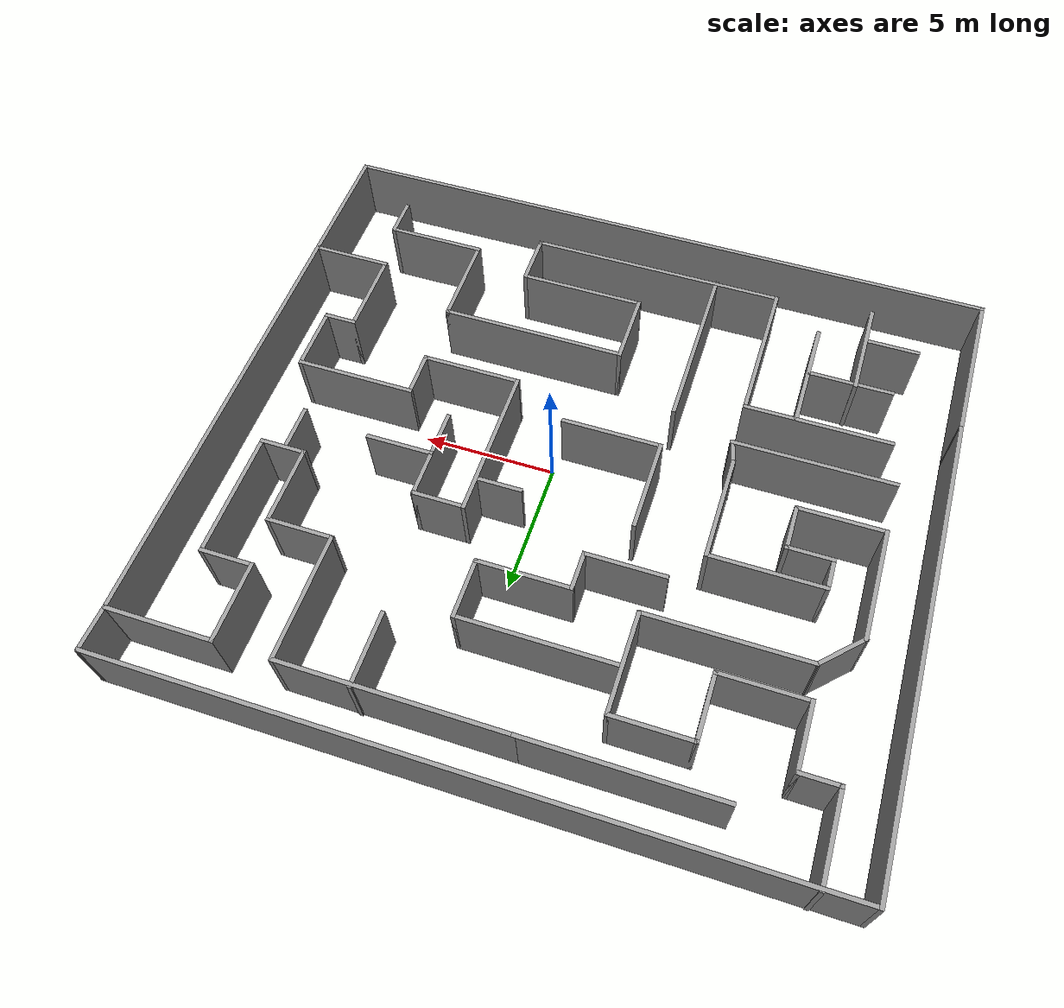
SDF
<?xml version='1.0'?>
<sdf version='1.7'>
  <model name='newgmapping'>
    <pose>-1.06194 0.890848 0 0 -0 0</pose>
    <link name='Wall_10'>
      <collision name='Wall_10_Collision'>
        <geometry>
          <box>
            <size>3.25 0.15 2.5</size>
          </box>
        </geometry>
        <pose>0 0 1.25 0 -0 0</pose>
      </collision>
      <visual name='Wall_10_Visual'>
        <pose>0 0 1.25 0 -0 0</pose>
        <geometry>
          <box>
            <size>3.25 0.15 2.5</size>
          </box>
        </geometry>
        <material>
          <script>
            <uri>file://media/materials/scripts/gazebo.material</uri>
            <name>Gazebo/Grey</name>
          </script>
          <ambient>1 1 1 1</ambient>
        </material>
        <meta>
          <layer>0</layer>
        </meta>
      </visual>
      <pose>-11.0888 9.92787 0 0 -0 -1.5708</pose>
    </link>
    <link name='Wall_11'>
      <collision name='Wall_11_Collision'>
        <geometry>
          <box>
            <size>1.5 0.15 2.5</size>
          </box>
        </geometry>
        <pose>0 0 1.25 0 -0 0</pose>
      </collision>
      <visual name='Wall_11_Visual'>
        <pose>0 0 1.25 0 -0 0</pose>
        <geometry>
          <box>
            <size>1.5 0.15 2.5</size>
          </box>
        </geometry>
        <material>
          <script>
            <uri>file://media/materials/scripts/gazebo.material</uri>
            <name>Gazebo/Grey</name>
          </script>
          <ambient>1 1 1 1</ambient>
        </material>
        <meta>
          <layer>0</layer>
        </meta>
      </visual>
      <pose>-10.4139 8.37787 0 0 -0 0</pose>
    </link>
    <link name='Wall_12'>
      <collision name='Wall_12_Collision'>
        <geometry>
          <box>
            <size>2.5 0.15 2.5</size>
          </box>
        </geometry>
        <pose>0 0 1.25 0 -0 0</pose>
      </collision>
      <visual name='Wall_12_Visual'>
        <pose>0 0 1.25 0 -0 0</pose>
        <geometry>
          <box>
            <size>2.5 0.15 2.5</size>
          </box>
        </geometry>
        <material>
          <script>
            <uri>file://media/materials/scripts/gazebo.material</uri>
            <name>Gazebo/Grey</name>
          </script>
          <ambient>1 1 1 1</ambient>
        </material>
        <meta>
          <layer>0</layer>
        </meta>
      </visual>
      <pose>-9.73885 7.20287 0 0 -0 -1.5708</pose>
    </link>
    <link name='Wall_13'>
      <collision name='Wall_13_Collision'>
        <geometry>
          <box>
            <size>3.25 0.15 2.5</size>
          </box>
        </geometry>
        <pose>0 0 1.25 0 -0 0</pose>
      </collision>
      <visual name='Wall_13_Visual'>
        <pose>0 0 1.25 0 -0 0</pose>
        <geometry>
          <box>
            <size>3.25 0.15 2.5</size>
          </box>
        </geometry>
        <material>
          <script>
            <uri>file://media/materials/scripts/gazebo.material</uri>
            <name>Gazebo/Grey</name>
          </script>
          <ambient>1 1 1 1</ambient>
        </material>
        <meta>
          <layer>0</layer>
        </meta>
      </visual>
      <pose>-8.18885 6.02787 0 0 -0 0</pose>
    </link>
    <link name='Wall_14'>
      <collision name='Wall_14_Collision'>
        <geometry>
          <box>
            <size>2.5 0.15 2.5</size>
          </box>
        </geometry>
        <pose>0 0 1.25 0 -0 0</pose>
      </collision>
      <visual name='Wall_14_Visual'>
        <pose>0 0 1.25 0 -0 0</pose>
        <geometry>
          <box>
            <size>2.5 0.15 2.5</size>
          </box>
        </geometry>
        <material>
          <script>
            <uri>file://media/materials/scripts/gazebo.material</uri>
            <name>Gazebo/Grey</name>
          </script>
          <ambient>1 1 1 1</ambient>
        </material>
        <meta>
          <layer>0</layer>
        </meta>
      </visual>
      <pose>-6.63885 7.20287 0 0 -0 1.5708</pose>
    </link>
    <link name='Wall_15'>
      <collision name='Wall_15_Collision'>
        <geometry>
          <box>
            <size>3 0.15 2.5</size>
          </box>
        </geometry>
        <pose>0 0 1.25 0 -0 0</pose>
      </collision>
      <visual name='Wall_15_Visual'>
        <pose>0 0 1.25 0 -0 0</pose>
        <geometry>
          <box>
            <size>3 0.15 2.5</size>
          </box>
        </geometry>
        <material>
          <script>
            <uri>file://media/materials/scripts/gazebo.material</uri>
            <name>Gazebo/Grey</name>
          </script>
          <ambient>1 1 1 1</ambient>
        </material>
        <meta>
          <layer>0</layer>
        </meta>
      </visual>
      <pose>-5.21385 8.37787 0 0 -0 0</pose>
    </link>
    <link name='Wall_16'>
      <collision name='Wall_16_Collision'>
        <geometry>
          <box>
            <size>3.75 0.15 2.5</size>
          </box>
        </geometry>
        <pose>0 0 1.25 0 -0 0</pose>
      </collision>
      <visual name='Wall_16_Visual'>
        <pose>0 0 1.25 0 -0 0</pose>
        <geometry>
          <box>
            <size>3.75 0.15 2.5</size>
          </box>
        </geometry>
        <material>
          <script>
            <uri>file://media/materials/scripts/gazebo.material</uri>
            <name>Gazebo/Grey</name>
          </script>
          <ambient>1 1 1 1</ambient>
        </material>
        <meta>
          <layer>0</layer>
        </meta>
      </visual>
      <pose>-3.78885 6.57787 0 0 -0 -1.5708</pose>
    </link>
    <link name='Wall_17'>
      <collision name='Wall_17_Collision'>
        <geometry>
          <box>
            <size>6 0.15 2.5</size>
          </box>
        </geometry>
        <pose>0 0 1.25 0 -0 0</pose>
      </collision>
      <visual name='Wall_17_Visual'>
        <pose>0 0 1.25 0 -0 0</pose>
        <geometry>
          <box>
            <size>6 0.15 2.5</size>
          </box>
        </geometry>
        <material>
          <script>
            <uri>file://media/materials/scripts/gazebo.material</uri>
            <name>Gazebo/Grey</name>
          </script>
          <ambient>1 1 1 1</ambient>
        </material>
        <meta>
          <layer>0</layer>
        </meta>
      </visual>
      <pose>-6.71385 4.77787 0 0 -0 3.14159</pose>
    </link>
    <link name='Wall_18'>
      <collision name='Wall_18_Collision'>
        <geometry>
          <box>
            <size>2 0.15 2.5</size>
          </box>
        </geometry>
        <pose>0 0 1.25 0 -0 0</pose>
      </collision>
      <visual name='Wall_18_Visual'>
        <pose>0 0 1.25 0 -0 0</pose>
        <geometry>
          <box>
            <size>2 0.15 2.5</size>
          </box>
        </geometry>
        <material>
          <script>
            <uri>file://media/materials/scripts/gazebo.material</uri>
            <name>Gazebo/Grey</name>
          </script>
          <ambient>1 1 1 1</ambient>
        </material>
        <meta>
          <layer>0</layer>
        </meta>
      </visual>
      <pose>-10.2929 4.1238 0 0 -0 -2.35619</pose>
    </link>
    <link name='Wall_19'>
      <collision name='Wall_19_Collision'>
        <geometry>
          <box>
            <size>4.25 0.15 2.5</size>
          </box>
        </geometry>
        <pose>0 0 1.25 0 -0 0</pose>
      </collision>
      <visual name='Wall_19_Visual'>
        <pose>0 0 1.25 0 -0 0</pose>
        <geometry>
          <box>
            <size>4.25 0.15 2.5</size>
          </box>
        </geometry>
        <material>
          <script>
            <uri>file://media/materials/scripts/gazebo.material</uri>
            <name>Gazebo/Grey</name>
          </script>
          <ambient>1 1 1 1</ambient>
        </material>
        <meta>
          <layer>0</layer>
        </meta>
      </visual>
      <pose>-10.947 1.41972 0 0 -0 -1.5708</pose>
    </link>
    <link name='Wall_20'>
      <collision name='Wall_20_Collision'>
        <geometry>
          <box>
            <size>3.25 0.15 2.5</size>
          </box>
        </geometry>
        <pose>0 0 1.25 0 -0 0</pose>
      </collision>
      <visual name='Wall_20_Visual'>
        <pose>0 0 1.25 0 -0 0</pose>
        <geometry>
          <box>
            <size>3.25 0.15 2.5</size>
          </box>
        </geometry>
        <material>
          <script>
            <uri>file://media/materials/scripts/gazebo.material</uri>
            <name>Gazebo/Grey</name>
          </script>
          <ambient>1 1 1 1</ambient>
        </material>
        <meta>
          <layer>0</layer>
        </meta>
      </visual>
      <pose>-9.397 -0.630278 0 0 -0 0</pose>
    </link>
    <link name='Wall_21'>
      <collision name='Wall_21_Collision'>
        <geometry>
          <box>
            <size>1.75 0.15 2.5</size>
          </box>
        </geometry>
        <pose>0 0 1.25 0 -0 0</pose>
      </collision>
      <visual name='Wall_21_Visual'>
        <pose>0 0 1.25 0 -0 0</pose>
        <geometry>
          <box>
            <size>1.75 0.15 2.5</size>
          </box>
        </geometry>
        <material>
          <script>
            <uri>file://media/materials/scripts/gazebo.material</uri>
            <name>Gazebo/Grey</name>
          </script>
          <ambient>1 1 1 1</ambient>
        </material>
        <meta>
          <layer>0</layer>
        </meta>
      </visual>
      <pose>-7.847 0.169722 0 0 -0 1.5708</pose>
    </link>
    <link name='Wall_22'>
      <collision name='Wall_22_Collision'>
        <geometry>
          <box>
            <size>1.75 0.15 2.5</size>
          </box>
        </geometry>
        <pose>0 0 1.25 0 -0 0</pose>
      </collision>
      <visual name='Wall_22_Visual'>
        <pose>0 0 1.25 0 -0 0</pose>
        <geometry>
          <box>
            <size>1.75 0.15 2.5</size>
          </box>
        </geometry>
        <material>
          <script>
            <uri>file://media/materials/scripts/gazebo.material</uri>
            <name>Gazebo/Grey</name>
          </script>
          <ambient>1 1 1 1</ambient>
        </material>
        <meta>
          <layer>0</layer>
        </meta>
      </visual>
      <pose>-8.647 0.969722 0 0 -0 3.14159</pose>
    </link>
    <link name='Wall_23'>
      <collision name='Wall_23_Collision'>
        <geometry>
          <box>
            <size>1.25 0.15 2.5</size>
          </box>
        </geometry>
        <pose>0 0 1.25 0 -0 0</pose>
      </collision>
      <visual name='Wall_23_Visual'>
        <pose>0 0 1.25 0 -0 0</pose>
        <geometry>
          <box>
            <size>1.25 0.15 2.5</size>
          </box>
        </geometry>
        <material>
          <script>
            <uri>file://media/materials/scripts/gazebo.material</uri>
            <name>Gazebo/Grey</name>
          </script>
          <ambient>1 1 1 1</ambient>
        </material>
        <meta>
          <layer>0</layer>
        </meta>
      </visual>
      <pose>-9.447 1.51972 0 0 -0 1.5708</pose>
    </link>
    <link name='Wall_24'>
      <collision name='Wall_24_Collision'>
        <geometry>
          <box>
            <size>4.25 0.15 2.5</size>
          </box>
        </geometry>
        <pose>0 0 1.25 0 -0 0</pose>
      </collision>
      <visual name='Wall_24_Visual'>
        <pose>0 0 1.25 0 -0 0</pose>
        <geometry>
          <box>
            <size>4.25 0.15 2.5</size>
          </box>
        </geometry>
        <material>
          <script>
            <uri>file://media/materials/scripts/gazebo.material</uri>
            <name>Gazebo/Grey</name>
          </script>
          <ambient>1 1 1 1</ambient>
        </material>
        <meta>
          <layer>0</layer>
        </meta>
      </visual>
      <pose>-7.397 2.06972 0 0 -0 0</pose>
    </link>
    <link name='Wall_25'>
      <collision name='Wall_25_Collision'>
        <geometry>
          <box>
            <size>4 0.15 2.5</size>
          </box>
        </geometry>
        <pose>0 0 1.25 0 -0 0</pose>
      </collision>
      <visual name='Wall_25_Visual'>
        <pose>0 0 1.25 0 -0 0</pose>
        <geometry>
          <box>
            <size>4 0.15 2.5</size>
          </box>
        </geometry>
        <material>
          <script>
            <uri>file://media/materials/scripts/gazebo.material</uri>
            <name>Gazebo/Grey</name>
          </script>
          <ambient>1 1 1 1</ambient>
        </material>
        <meta>
          <layer>0</layer>
        </meta>
      </visual>
      <pose>-5.347 0.144722 0 0 -0 -1.5708</pose>
    </link>
    <link name='Wall_26'>
      <collision name='Wall_26_Collision'>
        <geometry>
          <box>
            <size>1 0.15 2.5</size>
          </box>
        </geometry>
        <pose>0 0 1.25 0 -0 0</pose>
      </collision>
      <visual name='Wall_26_Visual'>
        <pose>0 0 1.25 0 -0 0</pose>
        <geometry>
          <box>
            <size>1 0.15 2.5</size>
          </box>
        </geometry>
        <material>
          <script>
            <uri>file://media/materials/scripts/gazebo.material</uri>
            <name>Gazebo/Grey</name>
          </script>
          <ambient>1 1 1 1</ambient>
        </material>
        <meta>
          <layer>0</layer>
        </meta>
      </visual>
      <pose>-5.237 -2.1908 0 0 -0 -1.309</pose>
    </link>
    <link name='Wall_27'>
      <collision name='Wall_27_Collision'>
        <geometry>
          <box>
            <size>6 0.15 2.5</size>
          </box>
        </geometry>
        <pose>0 0 1.25 0 -0 0</pose>
      </collision>
      <visual name='Wall_27_Visual'>
        <pose>0 0 1.25 0 -0 0</pose>
        <geometry>
          <box>
            <size>6 0.15 2.5</size>
          </box>
        </geometry>
        <material>
          <script>
            <uri>file://media/materials/scripts/gazebo.material</uri>
            <name>Gazebo/Grey</name>
          </script>
          <ambient>1 1 1 1</ambient>
        </material>
        <meta>
          <layer>0</layer>
        </meta>
      </visual>
      <pose>-8.052 -2.60132 0 0 -0 3.14159</pose>
    </link>
    <link name='Wall_29'>
      <collision name='Wall_29_Collision'>
        <geometry>
          <box>
            <size>4 0.15 2.5</size>
          </box>
        </geometry>
        <pose>0 0 1.25 0 -0 0</pose>
      </collision>
      <visual name='Wall_29_Visual'>
        <pose>0 0 1.25 0 -0 0</pose>
        <geometry>
          <box>
            <size>4 0.15 2.5</size>
          </box>
        </geometry>
        <material>
          <script>
            <uri>file://media/materials/scripts/gazebo.material</uri>
            <name>Gazebo/Grey</name>
          </script>
          <ambient>1 1 1 1</ambient>
        </material>
        <meta>
          <layer>0</layer>
        </meta>
      </visual>
      <pose>10.8483 9.87279 0 0 -0 3.14159</pose>
    </link>
    <link name='Wall_3'>
      <collision name='Wall_3_Collision'>
        <geometry>
          <box>
            <size>17.25 0.15 2.5</size>
          </box>
        </geometry>
        <pose>0 0 1.25 0 -0 0</pose>
      </collision>
      <visual name='Wall_3_Visual'>
        <pose>0 0 1.25 0 -0 0</pose>
        <geometry>
          <box>
            <size>17.25 0.15 2.5</size>
          </box>
        </geometry>
        <material>
          <script>
            <uri>file://media/materials/scripts/gazebo.material</uri>
            <name>Gazebo/Grey</name>
          </script>
          <ambient>1 1 1 1</ambient>
        </material>
        <meta>
          <layer>0</layer>
        </meta>
      </visual>
      <pose>-12.775 2.89264 0 0 -0 1.5708</pose>
    </link>
    <link name='Wall_30'>
      <collision name='Wall_30_Collision'>
        <geometry>
          <box>
            <size>3 0.15 2.5</size>
          </box>
        </geometry>
        <pose>0 0 1.25 0 -0 0</pose>
      </collision>
      <visual name='Wall_30_Visual'>
        <pose>0 0 1.25 0 -0 0</pose>
        <geometry>
          <box>
            <size>3 0.15 2.5</size>
          </box>
        </geometry>
        <material>
          <script>
            <uri>file://media/materials/scripts/gazebo.material</uri>
            <name>Gazebo/Grey</name>
          </script>
          <ambient>1 1 1 1</ambient>
        </material>
        <meta>
          <layer>0</layer>
        </meta>
      </visual>
      <pose>8.92327 8.44779 0 0 -0 -1.5708</pose>
    </link>
    <link name='Wall_31'>
      <collision name='Wall_31_Collision'>
        <geometry>
          <box>
            <size>2 0.15 2.5</size>
          </box>
        </geometry>
        <pose>0 0 1.25 0 -0 0</pose>
      </collision>
      <visual name='Wall_31_Visual'>
        <pose>0 0 1.25 0 -0 0</pose>
        <geometry>
          <box>
            <size>2 0.15 2.5</size>
          </box>
        </geometry>
        <material>
          <script>
            <uri>file://media/materials/scripts/gazebo.material</uri>
            <name>Gazebo/Grey</name>
          </script>
          <ambient>1 1 1 1</ambient>
        </material>
        <meta>
          <layer>0</layer>
        </meta>
      </visual>
      <pose>9.84827 7.02279 0 0 -0 0</pose>
    </link>
    <link name='Wall_32'>
      <collision name='Wall_32_Collision'>
        <geometry>
          <box>
            <size>4.75 0.15 2.5</size>
          </box>
        </geometry>
        <pose>0 0 1.25 0 -0 0</pose>
      </collision>
      <visual name='Wall_32_Visual'>
        <pose>0 0 1.25 0 -0 0</pose>
        <geometry>
          <box>
            <size>4.75 0.15 2.5</size>
          </box>
        </geometry>
        <material>
          <script>
            <uri>file://media/materials/scripts/gazebo.material</uri>
            <name>Gazebo/Grey</name>
          </script>
          <ambient>1 1 1 1</ambient>
        </material>
        <meta>
          <layer>0</layer>
        </meta>
      </visual>
      <pose>10.7733 4.72279 0 0 -0 -1.5708</pose>
    </link>
    <link name='Wall_33'>
      <collision name='Wall_33_Collision'>
        <geometry>
          <box>
            <size>1.75 0.15 2.5</size>
          </box>
        </geometry>
        <pose>0 0 1.25 0 -0 0</pose>
      </collision>
      <visual name='Wall_33_Visual'>
        <pose>0 0 1.25 0 -0 0</pose>
        <geometry>
          <box>
            <size>1.75 0.15 2.5</size>
          </box>
        </geometry>
        <material>
          <script>
            <uri>file://media/materials/scripts/gazebo.material</uri>
            <name>Gazebo/Grey</name>
          </script>
          <ambient>1 1 1 1</ambient>
        </material>
        <meta>
          <layer>0</layer>
        </meta>
      </visual>
      <pose>9.97327 2.42279 0 0 -0 3.14159</pose>
    </link>
    <link name='Wall_34'>
      <collision name='Wall_34_Collision'>
        <geometry>
          <box>
            <size>3 0.15 2.5</size>
          </box>
        </geometry>
        <pose>0 0 1.25 0 -0 0</pose>
      </collision>
      <visual name='Wall_34_Visual'>
        <pose>0 0 1.25 0 -0 0</pose>
        <geometry>
          <box>
            <size>3 0.15 2.5</size>
          </box>
        </geometry>
        <material>
          <script>
            <uri>file://media/materials/scripts/gazebo.material</uri>
            <name>Gazebo/Grey</name>
          </script>
          <ambient>1 1 1 1</ambient>
        </material>
        <meta>
          <layer>0</layer>
        </meta>
      </visual>
      <pose>9.17327 3.84779 0 0 -0 1.5708</pose>
    </link>
    <link name='Wall_35'>
      <collision name='Wall_35_Collision'>
        <geometry>
          <box>
            <size>2.5 0.15 2.5</size>
          </box>
        </geometry>
        <pose>0 0 1.25 0 -0 0</pose>
      </collision>
      <visual name='Wall_35_Visual'>
        <pose>0 0 1.25 0 -0 0</pose>
        <geometry>
          <box>
            <size>2.5 0.15 2.5</size>
          </box>
        </geometry>
        <material>
          <script>
            <uri>file://media/materials/scripts/gazebo.material</uri>
            <name>Gazebo/Grey</name>
          </script>
          <ambient>1 1 1 1</ambient>
        </material>
        <meta>
          <layer>0</layer>
        </meta>
      </visual>
      <pose>7.99827 5.27279 0 0 -0 3.14159</pose>
    </link>
    <link name='Wall_36'>
      <collision name='Wall_36_Collision'>
        <geometry>
          <box>
            <size>4.75 0.15 2.5</size>
          </box>
        </geometry>
        <pose>0 0 1.25 0 -0 0</pose>
      </collision>
      <visual name='Wall_36_Visual'>
        <pose>0 0 1.25 0 -0 0</pose>
        <geometry>
          <box>
            <size>4.75 0.15 2.5</size>
          </box>
        </geometry>
        <material>
          <script>
            <uri>file://media/materials/scripts/gazebo.material</uri>
            <name>Gazebo/Grey</name>
          </script>
          <ambient>1 1 1 1</ambient>
        </material>
        <meta>
          <layer>0</layer>
        </meta>
      </visual>
      <pose>6.82327 7.57279 0 0 -0 1.5708</pose>
    </link>
    <link name='Wall_37'>
      <collision name='Wall_37_Collision'>
        <geometry>
          <box>
            <size>8.25 0.15 2.5</size>
          </box>
        </geometry>
        <pose>0 0 1.25 0 -0 0</pose>
      </collision>
      <visual name='Wall_37_Visual'>
        <pose>0 0 1.25 0 -0 0</pose>
        <geometry>
          <box>
            <size>8.25 0.15 2.5</size>
          </box>
        </geometry>
        <material>
          <script>
            <uri>file://media/materials/scripts/gazebo.material</uri>
            <name>Gazebo/Grey</name>
          </script>
          <ambient>1 1 1 1</ambient>
        </material>
        <meta>
          <layer>0</layer>
        </meta>
      </visual>
      <pose>2.77327 9.87279 0 0 -0 3.14159</pose>
    </link>
    <link name='Wall_38'>
      <collision name='Wall_38_Collision'>
        <geometry>
          <box>
            <size>7 0.15 2.5</size>
          </box>
        </geometry>
        <pose>0 0 1.25 0 -0 0</pose>
      </collision>
      <visual name='Wall_38_Visual'>
        <pose>0 0 1.25 0 -0 0</pose>
        <geometry>
          <box>
            <size>7 0.15 2.5</size>
          </box>
        </geometry>
        <material>
          <script>
            <uri>file://media/materials/scripts/gazebo.material</uri>
            <name>Gazebo/Grey</name>
          </script>
          <ambient>1 1 1 1</ambient>
        </material>
        <meta>
          <layer>0</layer>
        </meta>
      </visual>
      <pose>-4.70173 9.87279 0 0 -0 3.14159</pose>
    </link>
    <link name='Wall_4'>
      <collision name='Wall_4_Collision'>
        <geometry>
          <box>
            <size>25.75 0.15 2.5</size>
          </box>
        </geometry>
        <pose>0 0 1.25 0 -0 0</pose>
      </collision>
      <visual name='Wall_4_Visual'>
        <pose>0 0 1.25 0 -0 0</pose>
        <geometry>
          <box>
            <size>25.75 0.15 2.5</size>
          </box>
        </geometry>
        <material>
          <script>
            <uri>file://media/materials/scripts/gazebo.material</uri>
            <name>Gazebo/Grey</name>
          </script>
          <ambient>1 1 1 1</ambient>
        </material>
        <meta>
          <layer>0</layer>
        </meta>
      </visual>
      <pose>0.024969 11.4426 0 0 -0 0</pose>
    </link>
    <link name='Wall_41'>
      <collision name='Wall_41_Collision'>
        <geometry>
          <box>
            <size>5.5 0.15 2.5</size>
          </box>
        </geometry>
        <pose>0 0 1.25 0 -0 0</pose>
      </collision>
      <visual name='Wall_41_Visual'>
        <pose>0 0 1.25 0 -0 0</pose>
        <geometry>
          <box>
            <size>5.5 0.15 2.5</size>
          </box>
        </geometry>
        <material>
          <script>
            <uri>file://media/materials/scripts/gazebo.material</uri>
            <name>Gazebo/Grey</name>
          </script>
          <ambient>1 1 1 1</ambient>
        </material>
        <meta>
          <layer>0</layer>
        </meta>
      </visual>
      <pose>-7.87882 -4.25187 0 0 -0 0</pose>
    </link>
    <link name='Wall_42'>
      <collision name='Wall_42_Collision'>
        <geometry>
          <box>
            <size>5.5 0.15 2.5</size>
          </box>
        </geometry>
        <pose>0 0 1.25 0 -0 0</pose>
      </collision>
      <visual name='Wall_42_Visual'>
        <pose>0 0 1.25 0 -0 0</pose>
        <geometry>
          <box>
            <size>5.5 0.15 2.5</size>
          </box>
        </geometry>
        <material>
          <script>
            <uri>file://media/materials/scripts/gazebo.material</uri>
            <name>Gazebo/Grey</name>
          </script>
          <ambient>1 1 1 1</ambient>
        </material>
        <meta>
          <layer>0</layer>
        </meta>
      </visual>
      <pose>-5.20383 -6.92687 0 0 -0 -1.5708</pose>
    </link>
    <link name='Wall_43'>
      <collision name='Wall_43_Collision'>
        <geometry>
          <box>
            <size>9.75 0.15 2.5</size>
          </box>
        </geometry>
        <pose>0 0 1.25 0 -0 0</pose>
      </collision>
      <visual name='Wall_43_Visual'>
        <pose>0 0 1.25 0 -0 0</pose>
        <geometry>
          <box>
            <size>9.75 0.15 2.5</size>
          </box>
        </geometry>
        <material>
          <script>
            <uri>file://media/materials/scripts/gazebo.material</uri>
            <name>Gazebo/Grey</name>
          </script>
          <ambient>1 1 1 1</ambient>
        </material>
        <meta>
          <layer>0</layer>
        </meta>
      </visual>
      <pose>-0.403824 -9.60187 0 0 -0 0</pose>
    </link>
    <link name='Wall_44'>
      <collision name='Wall_44_Collision'>
        <geometry>
          <box>
            <size>2 0.15 2.5</size>
          </box>
        </geometry>
        <pose>0 0 1.25 0 -0 0</pose>
      </collision>
      <visual name='Wall_44_Visual'>
        <pose>0 0 1.25 0 -0 0</pose>
        <geometry>
          <box>
            <size>2 0.15 2.5</size>
          </box>
        </geometry>
        <material>
          <script>
            <uri>file://media/materials/scripts/gazebo.material</uri>
            <name>Gazebo/Grey</name>
          </script>
          <ambient>1 1 1 1</ambient>
        </material>
        <meta>
          <layer>0</layer>
        </meta>
      </visual>
      <pose>4.39618 -8.67687 0 0 -0 1.5708</pose>
    </link>
    <link name='Wall_45'>
      <collision name='Wall_45_Collision'>
        <geometry>
          <box>
            <size>4.75 0.15 2.5</size>
          </box>
        </geometry>
        <pose>0 0 1.25 0 -0 0</pose>
      </collision>
      <visual name='Wall_45_Visual'>
        <pose>0 0 1.25 0 -0 0</pose>
        <geometry>
          <box>
            <size>4.75 0.15 2.5</size>
          </box>
        </geometry>
        <material>
          <script>
            <uri>file://media/materials/scripts/gazebo.material</uri>
            <name>Gazebo/Grey</name>
          </script>
          <ambient>1 1 1 1</ambient>
        </material>
        <meta>
          <layer>0</layer>
        </meta>
      </visual>
      <pose>2.09618 -7.75187 0 0 -0 3.14159</pose>
    </link>
    <link name='Wall_46'>
      <collision name='Wall_46_Collision'>
        <geometry>
          <box>
            <size>2.75 0.15 2.5</size>
          </box>
        </geometry>
        <pose>0 0 1.25 0 -0 0</pose>
      </collision>
      <visual name='Wall_46_Visual'>
        <pose>0 0 1.25 0 -0 0</pose>
        <geometry>
          <box>
            <size>2.75 0.15 2.5</size>
          </box>
        </geometry>
        <material>
          <script>
            <uri>file://media/materials/scripts/gazebo.material</uri>
            <name>Gazebo/Grey</name>
          </script>
          <ambient>1 1 1 1</ambient>
        </material>
        <meta>
          <layer>0</layer>
        </meta>
      </visual>
      <pose>-0.203825 -6.45187 0 0 -0 1.5708</pose>
    </link>
    <link name='Wall_47'>
      <collision name='Wall_47_Collision'>
        <geometry>
          <box>
            <size>7 0.15 2.5</size>
          </box>
        </geometry>
        <pose>0 0 1.25 0 -0 0</pose>
      </collision>
      <visual name='Wall_47_Visual'>
        <pose>0 0 1.25 0 -0 0</pose>
        <geometry>
          <box>
            <size>7 0.15 2.5</size>
          </box>
        </geometry>
        <material>
          <script>
            <uri>file://media/materials/scripts/gazebo.material</uri>
            <name>Gazebo/Grey</name>
          </script>
          <ambient>1 1 1 1</ambient>
        </material>
        <meta>
          <layer>0</layer>
        </meta>
      </visual>
      <pose>3.22118 -5.15187 0 0 -0 0</pose>
    </link>
    <link name='Wall_48'>
      <collision name='Wall_48_Collision'>
        <geometry>
          <box>
            <size>3.5 0.15 2.5</size>
          </box>
        </geometry>
        <pose>0 0 1.25 0 -0 0</pose>
      </collision>
      <visual name='Wall_48_Visual'>
        <pose>0 0 1.25 0 -0 0</pose>
        <geometry>
          <box>
            <size>3.5 0.15 2.5</size>
          </box>
        </geometry>
        <material>
          <script>
            <uri>file://media/materials/scripts/gazebo.material</uri>
            <name>Gazebo/Grey</name>
          </script>
          <ambient>1 1 1 1</ambient>
        </material>
        <meta>
          <layer>0</layer>
        </meta>
      </visual>
      <pose>6.64618 -6.82687 0 0 -0 -1.5708</pose>
    </link>
    <link name='Wall_49'>
      <collision name='Wall_49_Collision'>
        <geometry>
          <box>
            <size>3.75 0.15 2.5</size>
          </box>
        </geometry>
        <pose>0 0 1.25 0 -0 0</pose>
      </collision>
      <visual name='Wall_49_Visual'>
        <pose>0 0 1.25 0 -0 0</pose>
        <geometry>
          <box>
            <size>3.75 0.15 2.5</size>
          </box>
        </geometry>
        <material>
          <script>
            <uri>file://media/materials/scripts/gazebo.material</uri>
            <name>Gazebo/Grey</name>
          </script>
          <ambient>1 1 1 1</ambient>
        </material>
        <meta>
          <layer>0</layer>
        </meta>
      </visual>
      <pose>8.44618 -8.50187 0 0 -0 0</pose>
    </link>
    <link name='Wall_50'>
      <collision name='Wall_50_Collision'>
        <geometry>
          <box>
            <size>1.5 0.15 2.5</size>
          </box>
        </geometry>
        <pose>0 0 1.25 0 -0 0</pose>
      </collision>
      <visual name='Wall_50_Visual'>
        <pose>0 0 1.25 0 -0 0</pose>
        <geometry>
          <box>
            <size>1.5 0.15 2.5</size>
          </box>
        </geometry>
        <material>
          <script>
            <uri>file://media/materials/scripts/gazebo.material</uri>
            <name>Gazebo/Grey</name>
          </script>
          <ambient>1 1 1 1</ambient>
        </material>
        <meta>
          <layer>0</layer>
        </meta>
      </visual>
      <pose>10.2462 -9.17687 0 0 -0 -1.5708</pose>
    </link>
    <link name='Wall_52'>
      <collision name='Wall_52_Collision'>
        <geometry>
          <box>
            <size>4.25 0.15 2.5</size>
          </box>
        </geometry>
        <pose>0 0 1.25 0 -0 0</pose>
      </collision>
      <visual name='Wall_52_Visual'>
        <pose>0 0 1.25 0 -0 0</pose>
        <geometry>
          <box>
            <size>4.25 0.15 2.5</size>
          </box>
        </geometry>
        <material>
          <script>
            <uri>file://media/materials/scripts/gazebo.material</uri>
            <name>Gazebo/Grey</name>
          </script>
          <ambient>1 1 1 1</ambient>
        </material>
        <meta>
          <layer>0</layer>
        </meta>
      </visual>
      <pose>-7.07616 -6.35537 0 0 -0 -1.5708</pose>
    </link>
    <link name='Wall_54'>
      <collision name='Wall_54_Collision'>
        <geometry>
          <box>
            <size>3.25 0.15 2.5</size>
          </box>
        </geometry>
        <pose>0 0 1.25 0 -0 0</pose>
      </collision>
      <visual name='Wall_54_Visual'>
        <pose>0 0 1.25 0 -0 0</pose>
        <geometry>
          <box>
            <size>3.25 0.15 2.5</size>
          </box>
        </geometry>
        <material>
          <script>
            <uri>file://media/materials/scripts/gazebo.material</uri>
            <name>Gazebo/Grey</name>
          </script>
          <ambient>1 1 1 1</ambient>
        </material>
        <meta>
          <layer>0</layer>
        </meta>
      </visual>
      <pose>-8.62616 -6.44547 0 0 -0 3.14159</pose>
    </link>
    <link name='Wall_58'>
      <collision name='Wall_58_Collision'>
        <geometry>
          <box>
            <size>3.75 0.15 2.5</size>
          </box>
        </geometry>
        <pose>0 0 1.25 0 -0 0</pose>
      </collision>
      <visual name='Wall_58_Visual'>
        <pose>0 0 1.25 0 -0 0</pose>
        <geometry>
          <box>
            <size>3.75 0.15 2.5</size>
          </box>
        </geometry>
        <material>
          <script>
            <uri>file://media/materials/scripts/gazebo.material</uri>
            <name>Gazebo/Grey</name>
          </script>
          <ambient>1 1 1 1</ambient>
        </material>
        <meta>
          <layer>0</layer>
        </meta>
      </visual>
      <pose>-8.84174 -8.19197 0 0 -0 -1.5708</pose>
    </link>
    <link name='Wall_6'>
      <collision name='Wall_6_Collision'>
        <geometry>
          <box>
            <size>21.5 0.15 2.5</size>
          </box>
        </geometry>
        <pose>0 0 1.25 0 -0 0</pose>
      </collision>
      <visual name='Wall_6_Visual'>
        <pose>0 0 1.25 0 -0 0</pose>
        <geometry>
          <box>
            <size>21.5 0.15 2.5</size>
          </box>
        </geometry>
        <material>
          <script>
            <uri>file://media/materials/scripts/gazebo.material</uri>
            <name>Gazebo/Grey</name>
          </script>
          <ambient>1 1 1 1</ambient>
        </material>
        <meta>
          <layer>0</layer>
        </meta>
      </visual>
      <pose>12.7733 -0.802206 0 0 -0 -1.5708</pose>
    </link>
    <link name='Wall_60'>
      <collision name='Wall_60_Collision'>
        <geometry>
          <box>
            <size>3 0.15 2.5</size>
          </box>
        </geometry>
        <pose>0 0 1.25 0 -0 0</pose>
      </collision>
      <visual name='Wall_60_Visual'>
        <pose>0 0 1.25 0 -0 0</pose>
        <geometry>
          <box>
            <size>3 0.15 2.5</size>
          </box>
        </geometry>
        <material>
          <script>
            <uri>file://media/materials/scripts/gazebo.material</uri>
            <name>Gazebo/Grey</name>
          </script>
          <ambient>1 1 1 1</ambient>
        </material>
        <meta>
          <layer>0</layer>
        </meta>
      </visual>
      <pose>11.2948 -6.65948 0 0 -0 3.14159</pose>
    </link>
    <link name='Wall_61'>
      <collision name='Wall_61_Collision'>
        <geometry>
          <box>
            <size>3.25 0.15 2.5</size>
          </box>
        </geometry>
        <pose>0 0 1.25 0 -0 0</pose>
      </collision>
      <visual name='Wall_61_Visual'>
        <pose>0 0 1.25 0 -0 0</pose>
        <geometry>
          <box>
            <size>3.25 0.15 2.5</size>
          </box>
        </geometry>
        <material>
          <script>
            <uri>file://media/materials/scripts/gazebo.material</uri>
            <name>Gazebo/Grey</name>
          </script>
          <ambient>1 1 1 1</ambient>
        </material>
        <meta>
          <layer>0</layer>
        </meta>
      </visual>
      <pose>9.86976 -5.10948 0 0 -0 1.5708</pose>
    </link>
    <link name='Wall_62'>
      <collision name='Wall_62_Collision'>
        <geometry>
          <box>
            <size>1.25 0.15 2.5</size>
          </box>
        </geometry>
        <pose>0 0 1.25 0 -0 0</pose>
      </collision>
      <visual name='Wall_62_Visual'>
        <pose>0 0 1.25 0 -0 0</pose>
        <geometry>
          <box>
            <size>1.25 0.15 2.5</size>
          </box>
        </geometry>
        <material>
          <script>
            <uri>file://media/materials/scripts/gazebo.material</uri>
            <name>Gazebo/Grey</name>
          </script>
          <ambient>1 1 1 1</ambient>
        </material>
        <meta>
          <layer>0</layer>
        </meta>
      </visual>
      <pose>10.4198 -3.55948 0 0 -0 0</pose>
    </link>
    <link name='Wall_63'>
      <collision name='Wall_63_Collision'>
        <geometry>
          <box>
            <size>2.5 0.15 2.5</size>
          </box>
        </geometry>
        <pose>0 0 1.25 0 -0 0</pose>
      </collision>
      <visual name='Wall_63_Visual'>
        <pose>0 0 1.25 0 -0 0</pose>
        <geometry>
          <box>
            <size>2.5 0.15 2.5</size>
          </box>
        </geometry>
        <material>
          <script>
            <uri>file://media/materials/scripts/gazebo.material</uri>
            <name>Gazebo/Grey</name>
          </script>
          <ambient>1 1 1 1</ambient>
        </material>
        <meta>
          <layer>0</layer>
        </meta>
      </visual>
      <pose>10.9698 -2.38448 0 0 -0 1.5708</pose>
    </link>
    <link name='Wall_64'>
      <collision name='Wall_64_Collision'>
        <geometry>
          <box>
            <size>4.5 0.15 2.5</size>
          </box>
        </geometry>
        <pose>0 0 1.25 0 -0 0</pose>
      </collision>
      <visual name='Wall_64_Visual'>
        <pose>0 0 1.25 0 -0 0</pose>
        <geometry>
          <box>
            <size>4.5 0.15 2.5</size>
          </box>
        </geometry>
        <material>
          <script>
            <uri>file://media/materials/scripts/gazebo.material</uri>
            <name>Gazebo/Grey</name>
          </script>
          <ambient>1 1 1 1</ambient>
        </material>
        <meta>
          <layer>0</layer>
        </meta>
      </visual>
      <pose>8.79476 -1.20948 0 0 -0 3.14159</pose>
    </link>
    <link name='Wall_65'>
      <collision name='Wall_65_Collision'>
        <geometry>
          <box>
            <size>1.75 0.15 2.5</size>
          </box>
        </geometry>
        <pose>0 0 1.25 0 -0 0</pose>
      </collision>
      <visual name='Wall_65_Visual'>
        <pose>0 0 1.25 0 -0 0</pose>
        <geometry>
          <box>
            <size>1.75 0.15 2.5</size>
          </box>
        </geometry>
        <material>
          <script>
            <uri>file://media/materials/scripts/gazebo.material</uri>
            <name>Gazebo/Grey</name>
          </script>
          <ambient>1 1 1 1</ambient>
        </material>
        <meta>
          <layer>0</layer>
        </meta>
      </visual>
      <pose>6.61976 -2.00948 0 0 -0 -1.5708</pose>
    </link>
    <link name='Wall_66'>
      <collision name='Wall_66_Collision'>
        <geometry>
          <box>
            <size>3.75 0.15 2.5</size>
          </box>
        </geometry>
        <pose>0 0 1.25 0 -0 0</pose>
      </collision>
      <visual name='Wall_66_Visual'>
        <pose>0 0 1.25 0 -0 0</pose>
        <geometry>
          <box>
            <size>3.75 0.15 2.5</size>
          </box>
        </geometry>
        <material>
          <script>
            <uri>file://media/materials/scripts/gazebo.material</uri>
            <name>Gazebo/Grey</name>
          </script>
          <ambient>1 1 1 1</ambient>
        </material>
        <meta>
          <layer>0</layer>
        </meta>
      </visual>
      <pose>4.81976 -2.80948 0 0 -0 3.14159</pose>
    </link>
    <link name='Wall_67'>
      <collision name='Wall_67_Collision'>
        <geometry>
          <box>
            <size>5.75 0.15 2.5</size>
          </box>
        </geometry>
        <pose>0 0 1.25 0 -0 0</pose>
      </collision>
      <visual name='Wall_67_Visual'>
        <pose>0 0 1.25 0 -0 0</pose>
        <geometry>
          <box>
            <size>5.75 0.15 2.5</size>
          </box>
        </geometry>
        <material>
          <script>
            <uri>file://media/materials/scripts/gazebo.material</uri>
            <name>Gazebo/Grey</name>
          </script>
          <ambient>1 1 1 1</ambient>
        </material>
        <meta>
          <layer>0</layer>
        </meta>
      </visual>
      <pose>3.01976 -0.009479 0 0 -0 1.5708</pose>
    </link>
    <link name='Wall_68'>
      <collision name='Wall_68_Collision'>
        <geometry>
          <box>
            <size>2 0.15 2.5</size>
          </box>
        </geometry>
        <pose>0 0 1.25 0 -0 0</pose>
      </collision>
      <visual name='Wall_68_Visual'>
        <pose>0 0 1.25 0 -0 0</pose>
        <geometry>
          <box>
            <size>2 0.15 2.5</size>
          </box>
        </geometry>
        <material>
          <script>
            <uri>file://media/materials/scripts/gazebo.material</uri>
            <name>Gazebo/Grey</name>
          </script>
          <ambient>1 1 1 1</ambient>
        </material>
        <meta>
          <layer>0</layer>
        </meta>
      </visual>
      <pose>3.94476 2.79052 0 0 -0 0</pose>
    </link>
    <link name='Wall_69'>
      <collision name='Wall_69_Collision'>
        <geometry>
          <box>
            <size>3.5 0.15 2.5</size>
          </box>
        </geometry>
        <pose>0 0 1.25 0 -0 0</pose>
      </collision>
      <visual name='Wall_69_Visual'>
        <pose>0 0 1.25 0 -0 0</pose>
        <geometry>
          <box>
            <size>3.5 0.15 2.5</size>
          </box>
        </geometry>
        <material>
          <script>
            <uri>file://media/materials/scripts/gazebo.material</uri>
            <name>Gazebo/Grey</name>
          </script>
          <ambient>1 1 1 1</ambient>
        </material>
        <meta>
          <layer>0</layer>
        </meta>
      </visual>
      <pose>4.86976 1.11552 0 0 -0 -1.5708</pose>
    </link>
    <link name='Wall_7'>
      <collision name='Wall_7_Collision'>
        <geometry>
          <box>
            <size>25.75 0.15 2.5</size>
          </box>
        </geometry>
        <pose>0 0 1.25 0 -0 0</pose>
      </collision>
      <visual name='Wall_7_Visual'>
        <pose>0 0 1.25 0 -0 0</pose>
        <geometry>
          <box>
            <size>25.75 0.15 2.5</size>
          </box>
        </geometry>
        <material>
          <script>
            <uri>file://media/materials/scripts/gazebo.material</uri>
            <name>Gazebo/Grey</name>
          </script>
          <ambient>1 1 1 1</ambient>
        </material>
        <meta>
          <layer>0</layer>
        </meta>
      </visual>
      <pose>-0.026734 -11.4772 0 0 -0 3.14159</pose>
    </link>
    <link name='Wall_71'>
      <collision name='Wall_71_Collision'>
        <geometry>
          <box>
            <size>2.5 0.15 2.5</size>
          </box>
        </geometry>
        <pose>0 0 1.25 0 -0 0</pose>
      </collision>
      <visual name='Wall_71_Visual'>
        <pose>0 0 1.25 0 -0 0</pose>
        <geometry>
          <box>
            <size>2.5 0.15 2.5</size>
          </box>
        </geometry>
        <material>
          <script>
            <uri>file://media/materials/scripts/gazebo.material</uri>
            <name>Gazebo/Grey</name>
          </script>
          <ambient>1 1 1 1</ambient>
        </material>
        <meta>
          <layer>0</layer>
        </meta>
      </visual>
      <pose>6.0834 1.09838 0 0 -0 0</pose>
    </link>
    <link name='Wall_73'>
      <collision name='Wall_73_Collision'>
        <geometry>
          <box>
            <size>5.75 0.15 2.5</size>
          </box>
        </geometry>
        <pose>0 0 1.25 0 -0 0</pose>
      </collision>
      <visual name='Wall_73_Visual'>
        <pose>0 0 1.25 0 -0 0</pose>
        <geometry>
          <box>
            <size>5.75 0.15 2.5</size>
          </box>
        </geometry>
        <material>
          <script>
            <uri>file://media/materials/scripts/gazebo.material</uri>
            <name>Gazebo/Grey</name>
          </script>
          <ambient>1 1 1 1</ambient>
        </material>
        <meta>
          <layer>0</layer>
        </meta>
      </visual>
      <pose>-0.905504 6.71615 0 0 -0 0</pose>
    </link>
    <link name='Wall_74'>
      <collision name='Wall_74_Collision'>
        <geometry>
          <box>
            <size>2.25 0.15 2.5</size>
          </box>
        </geometry>
        <pose>0 0 1.25 0 -0 0</pose>
      </collision>
      <visual name='Wall_74_Visual'>
        <pose>0 0 1.25 0 -0 0</pose>
        <geometry>
          <box>
            <size>2.25 0.15 2.5</size>
          </box>
        </geometry>
        <material>
          <script>
            <uri>file://media/materials/scripts/gazebo.material</uri>
            <name>Gazebo/Grey</name>
          </script>
          <ambient>1 1 1 1</ambient>
        </material>
        <meta>
          <layer>0</layer>
        </meta>
      </visual>
      <pose>1.8945 5.66615 0 0 -0 -1.5708</pose>
    </link>
    <link name='Wall_75'>
      <collision name='Wall_75_Collision'>
        <geometry>
          <box>
            <size>3.5 0.15 2.5</size>
          </box>
        </geometry>
        <pose>0 0 1.25 0 -0 0</pose>
      </collision>
      <visual name='Wall_75_Visual'>
        <pose>0 0 1.25 0 -0 0</pose>
        <geometry>
          <box>
            <size>3.5 0.15 2.5</size>
          </box>
        </geometry>
        <material>
          <script>
            <uri>file://media/materials/scripts/gazebo.material</uri>
            <name>Gazebo/Grey</name>
          </script>
          <ambient>1 1 1 1</ambient>
        </material>
        <meta>
          <layer>0</layer>
        </meta>
      </visual>
      <pose>0.219496 4.61615 0 0 -0 3.14159</pose>
    </link>
    <link name='Wall_76'>
      <collision name='Wall_76_Collision'>
        <geometry>
          <box>
            <size>1.5 0.15 2.5</size>
          </box>
        </geometry>
        <pose>0 0 1.25 0 -0 0</pose>
      </collision>
      <visual name='Wall_76_Visual'>
        <pose>0 0 1.25 0 -0 0</pose>
        <geometry>
          <box>
            <size>1.5 0.15 2.5</size>
          </box>
        </geometry>
        <material>
          <script>
            <uri>file://media/materials/scripts/gazebo.material</uri>
            <name>Gazebo/Grey</name>
          </script>
          <ambient>1 1 1 1</ambient>
        </material>
        <meta>
          <layer>0</layer>
        </meta>
      </visual>
      <pose>-1.4555 3.94115 0 0 -0 -1.5708</pose>
    </link>
    <link name='Wall_77'>
      <collision name='Wall_77_Collision'>
        <geometry>
          <box>
            <size>3 0.15 2.5</size>
          </box>
        </geometry>
        <pose>0 0 1.25 0 -0 0</pose>
      </collision>
      <visual name='Wall_77_Visual'>
        <pose>0 0 1.25 0 -0 0</pose>
        <geometry>
          <box>
            <size>3 0.15 2.5</size>
          </box>
        </geometry>
        <material>
          <script>
            <uri>file://media/materials/scripts/gazebo.material</uri>
            <name>Gazebo/Grey</name>
          </script>
          <ambient>1 1 1 1</ambient>
        </material>
        <meta>
          <layer>0</layer>
        </meta>
      </visual>
      <pose>-2.8805 3.26615 0 0 -0 3.14159</pose>
    </link>
    <link name='Wall_8'>
      <collision name='Wall_8_Collision'>
        <geometry>
          <box>
            <size>5.97007 0.15 2.5</size>
          </box>
        </geometry>
        <pose>0 0 1.25 0 -0 0</pose>
      </collision>
      <visual name='Wall_8_Visual'>
        <pose>0 0 1.25 0 -0 0</pose>
        <geometry>
          <box>
            <size>5.97007 0.15 2.5</size>
          </box>
        </geometry>
        <material>
          <script>
            <uri>file://media/materials/scripts/gazebo.material</uri>
            <name>Gazebo/Grey</name>
          </script>
          <ambient>1 1 1 1</ambient>
        </material>
        <meta>
          <layer>0</layer>
        </meta>
      </visual>
      <pose>-12.8009 -8.56728 0 0 -0 1.56191</pose>
    </link>
    <link name='Wall_81'>
      <collision name='Wall_81_Collision'>
        <geometry>
          <box>
            <size>6.5 0.15 2.5</size>
          </box>
        </geometry>
        <pose>0 0 1.25 0 -0 0</pose>
      </collision>
      <visual name='Wall_81_Visual'>
        <pose>0 0 1.25 0 -0 0</pose>
        <geometry>
          <box>
            <size>6.5 0.15 2.5</size>
          </box>
        </geometry>
        <material>
          <script>
            <uri>file://media/materials/scripts/gazebo.material</uri>
            <name>Gazebo/Grey</name>
          </script>
          <ambient>1 1 1 1</ambient>
        </material>
        <meta>
          <layer>0</layer>
        </meta>
      </visual>
      <pose>-2.79596 -6.48062 0 0 -0 1.5708</pose>
    </link>
    <link name='Wall_83'>
      <collision name='Wall_83_Collision'>
        <geometry>
          <box>
            <size>2 0.15 2.5</size>
          </box>
        </geometry>
        <pose>0 0 1.25 0 -0 0</pose>
      </collision>
      <visual name='Wall_83_Visual'>
        <pose>0 0 1.25 0 -0 0</pose>
        <geometry>
          <box>
            <size>2 0.15 2.5</size>
          </box>
        </geometry>
        <material>
          <script>
            <uri>file://media/materials/scripts/gazebo.material</uri>
            <name>Gazebo/Grey</name>
          </script>
          <ambient>1 1 1 1</ambient>
        </material>
        <meta>
          <layer>0</layer>
        </meta>
      </visual>
      <pose>-9.87375 -8.58557 0 0 -0 3.14159</pose>
    </link>
    <link name='Wall_85'>
      <collision name='Wall_85_Collision'>
        <geometry>
          <box>
            <size>3.5 0.15 2.5</size>
          </box>
        </geometry>
        <pose>0 0 1.25 0 -0 0</pose>
      </collision>
      <visual name='Wall_85_Visual'>
        <pose>0 0 1.25 0 -0 0</pose>
        <geometry>
          <box>
            <size>3.5 0.15 2.5</size>
          </box>
        </geometry>
        <material>
          <script>
            <uri>file://media/materials/scripts/gazebo.material</uri>
            <name>Gazebo/Grey</name>
          </script>
          <ambient>1 1 1 1</ambient>
        </material>
        <meta>
          <layer>0</layer>
        </meta>
      </visual>
      <pose>-2.74246 0.011912 0 0 -0 -1.5708</pose>
    </link>
    <link name='Wall_86'>
      <collision name='Wall_86_Collision'>
        <geometry>
          <box>
            <size>3.75 0.15 2.5</size>
          </box>
        </geometry>
        <pose>0 0 1.25 0 -0 0</pose>
      </collision>
      <visual name='Wall_86_Visual'>
        <pose>0 0 1.25 0 -0 0</pose>
        <geometry>
          <box>
            <size>3.75 0.15 2.5</size>
          </box>
        </geometry>
        <material>
          <script>
            <uri>file://media/materials/scripts/gazebo.material</uri>
            <name>Gazebo/Grey</name>
          </script>
          <ambient>1 1 1 1</ambient>
        </material>
        <meta>
          <layer>0</layer>
        </meta>
      </visual>
      <pose>-0.942459 -1.66309 0 0 -0 0</pose>
    </link>
    <link name='Wall_88'>
      <collision name='Wall_88_Collision'>
        <geometry>
          <box>
            <size>2.75 0.15 2.5</size>
          </box>
        </geometry>
        <pose>0 0 1.25 0 -0 0</pose>
      </collision>
      <visual name='Wall_88_Visual'>
        <pose>0 0 1.25 0 -0 0</pose>
        <geometry>
          <box>
            <size>2.75 0.15 2.5</size>
          </box>
        </geometry>
        <material>
          <script>
            <uri>file://media/materials/scripts/gazebo.material</uri>
            <name>Gazebo/Grey</name>
          </script>
          <ambient>1 1 1 1</ambient>
        </material>
        <meta>
          <layer>0</layer>
        </meta>
      </visual>
      <pose>4.10586 8.6263 0 0 -0 -1.5708</pose>
    </link>
    <link name='Wall_90'>
      <collision name='Wall_90_Collision'>
        <geometry>
          <box>
            <size>1.7207 0.15 2.5</size>
          </box>
        </geometry>
        <pose>0 0 1.25 0 -0 0</pose>
      </collision>
      <visual name='Wall_90_Visual'>
        <pose>0 0 1.25 0 -0 0</pose>
        <geometry>
          <box>
            <size>1.7207 0.15 2.5</size>
          </box>
        </geometry>
        <material>
          <script>
            <uri>file://media/materials/scripts/gazebo.material</uri>
            <name>Gazebo/Grey</name>
          </script>
          <ambient>1 1 1 1</ambient>
        </material>
        <meta>
          <layer>0</layer>
        </meta>
      </visual>
      <pose>12.7991 10.6577 0 0 -0 -1.60372</pose>
    </link>
    <link name='Wall_96'>
      <collision name='Wall_96_Collision'>
        <geometry>
          <box>
            <size>1.75 0.15 2.5</size>
          </box>
        </geometry>
        <pose>0 0 1.25 0 -0 0</pose>
      </collision>
      <visual name='Wall_96_Visual'>
        <pose>0 0 1.25 0 -0 0</pose>
        <geometry>
          <box>
            <size>1.75 0.15 2.5</size>
          </box>
        </geometry>
        <material>
          <script>
            <uri>file://media/materials/scripts/gazebo.material</uri>
            <name>Gazebo/Grey</name>
          </script>
          <ambient>1 1 1 1</ambient>
        </material>
        <meta>
          <layer>0</layer>
        </meta>
      </visual>
      <pose>2.18231 1.57991 0 0 -0 3.14159</pose>
    </link>
    <link name='Wall_98'>
      <collision name='Wall_98_Collision'>
        <geometry>
          <box>
            <size>1.75 0.15 2.5</size>
          </box>
        </geometry>
        <pose>0 0 1.25 0 -0 0</pose>
      </collision>
      <visual name='Wall_98_Visual'>
        <pose>0 0 1.25 0 -0 0</pose>
        <geometry>
          <box>
            <size>1.75 0.15 2.5</size>
          </box>
        </geometry>
        <material>
          <script>
            <uri>file://media/materials/scripts/gazebo.material</uri>
            <name>Gazebo/Grey</name>
          </script>
          <ambient>1 1 1 1</ambient>
        </material>
        <meta>
          <layer>0</layer>
        </meta>
      </visual>
      <pose>9.89504 1.57217 0 0 -0 -1.5708</pose>
    </link>
    <static>1</static>
  </model>
</sdf>
